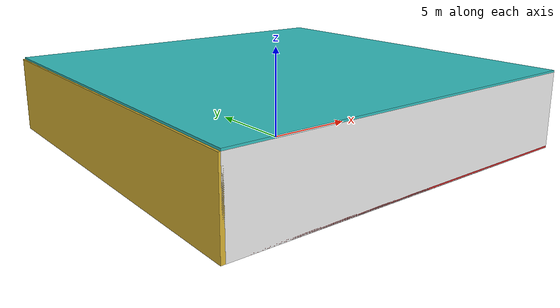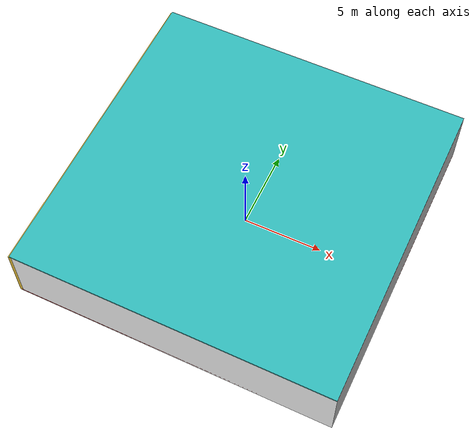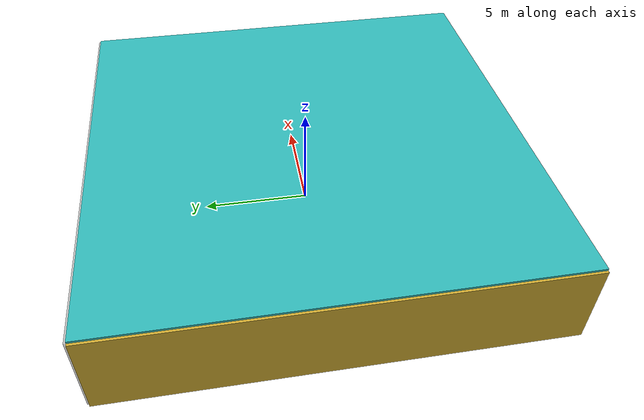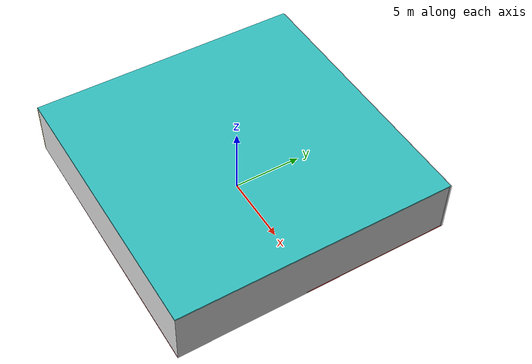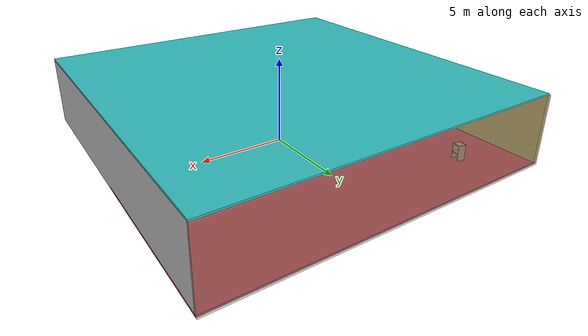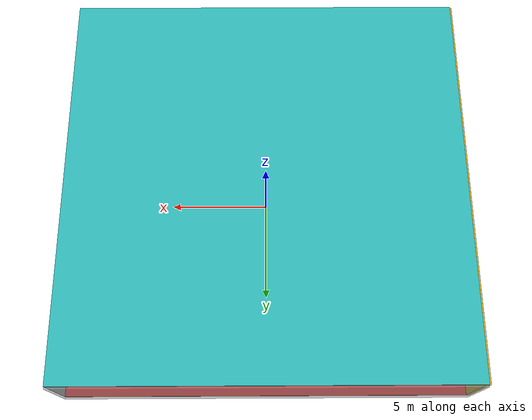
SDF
<sdf version="1.4">
 <world name="default">
  <physics type="ode">
   <max_step_size>0.001</max_step_size>
   <real_time_factor>1</real_time_factor>
   <real_time_update_rate>1000</real_time_update_rate>
   <gravity>0 0 -9.8</gravity>
  </physics>
  <scene><ambient>0.4 0.4 0.4 1</ambient><background>0.7 0.7 0.7 1</background><shadows>1</shadows></scene>
  <model name="Surrounding">
   <static>1</static>
   <link name="Ceiling">
    <collision name="Ceiling_Collision"><geometry><box><size>20 20 0.1</size></box></geometry></collision>
    <visual name="Ceiling_Visual">
     <geometry><box><size>20 20 0.1</size></box></geometry>
     <material>
      <script>
       <uri>file://media/materials/scripts/gazebo.material</uri>
       <name>Gazebo/TurquoiseGlowOutline</name>
      </script>
     </material>
    </visual>
    <pose>0 0 4.05 0 0 0</pose>
   </link>
   <link name="Wall_South">
    <collision name="Wall_South_Collision">
     <geometry><box><size>20 0 4</size></box></geometry>
     <pose>0 0 2 0 -0 0</pose>
    </collision>
    <visual name="Wall_South_Visual">
     <pose>0 0 2 0 -0 0</pose>
     <geometry><box><size>20 0 4</size></box></geometry>
     <material>
      <script><uri>file://media/materials/scripts/gazebo.material</uri><name>Gazebo/WhiteGlow</name></script>
     </material>
    </visual>
    <velocity_decay><linear>0</linear><angular>0</angular></velocity_decay>
    <pose>0 -10 0 0 -0 0</pose>
   </link>
   <link name="Wall_East">
    <collision name="Wall_21_Collision">
     <geometry><box><size>20 0 4</size></box></geometry>
     <pose>0 0 2 0 -0 0</pose>
    </collision>
    <visual name="Wall_21_Visual">
     <pose>0 0 2 0 -0 0</pose>
     <geometry><box><size>20 0 4</size></box></geometry>
     <material>
      <script><uri>file://media/materials/scripts/gazebo.material</uri><name>Gazebo/LightOff</name></script>
     </material>
    </visual>
    <velocity_decay><linear>0</linear><angular>0</angular></velocity_decay>
    <pose>10 0 0 0 -0 1.5708</pose>
   </link>
   <link name="Wall_North">
    <collision name="Wall_22_Collision">
     <geometry><box><size>20 0.2 4</size></box></geometry>
     <pose>0 0 2 0 -0 0</pose>
    </collision>
    <visual name="Wall_22_Visual">
     <pose>0 0 2 0 -0 0</pose>
     <geometry><box><size>20 0.2 4</size></box></geometry>
     <material>
      <script><uri>file://media/materials/scripts/gazebo.material</uri><name>Gazebo/GreyTransparent</name></script>
     </material>
    </visual>
    <velocity_decay><linear>0</linear><angular>0</angular></velocity_decay>
    <pose>0 10 0 0 -0 0</pose>
   </link>
   <link name="Wall_West">
    <collision name="Wall_23_Collision">
     <geometry><box><size>20 0.2 4</size></box></geometry>
     <pose>0 0 2 0 -0 0</pose>
    </collision>
    <visual name="Wall_23_Visual">
     <pose>0 0 2 0 -0 0</pose>
     <geometry><box><size>20 0.2 4</size></box></geometry>
     <material>
      <script><uri>file://media/materials/scripts/gazebo.material</uri><name>Gazebo/Gold</name></script>
     </material>
    </visual>
    <velocity_decay><linear>0</linear><angular>0</angular></velocity_decay>
    <pose>-10 0 0 0 0 -1.5708</pose>
   </link>
   <link name="Ground_link">
    <collision name="collision">
     <pose>0 0 .05 0 -0 0</pose>
     <geometry><box><size>20 20 0.1</size></box></geometry>
    </collision>
    <visual name="visual">
     <pose>0 0 .05 0 -0 0</pose>
     <geometry><box><size>20 20 0.1</size></box></geometry>
     <material>
      <script><uri>file://media/materials/scripts/gazebo.material</uri><name>Gazebo/RedGlow</name></script>
     </material>
    </visual>
   </link>
   <static>1</static>
  </model>
  <spherical_coordinates>
   <surface_model>EARTH_WGS84</surface_model>
   <latitude_deg>0</latitude_deg>
   <longitude_deg>0</longitude_deg>
   <elevation>0</elevation>
   <heading_deg>0</heading_deg>
  </spherical_coordinates>
  <light name="lightball_0" type="diffuse">
   <diffuse>0.8 0.8 0.8 1</diffuse>
   <specular>0.2 0.2 0.2 1</specular>
   <attenuation>
    <range>100</range>
    <constant>0.7</constant>
    <linear>0.01</linear>
    <quadratic>0.001</quadratic>
   </attenuation>
   <direction>-0.5 0.1 -0.9</direction>
   <pose>-8.42802159149 5.50234143477 0.971155930541 0 0 0</pose>
  </light>
  <light name="lightball_1" type="diffuse">
   <diffuse>0.8 0.8 0.8 1</diffuse>
   <specular>0.2 0.2 0.2 1</specular>
   <attenuation>
    <range>100</range>
    <constant>0.7</constant>
    <linear>0.01</linear>
    <quadratic>0.001</quadratic>
   </attenuation>
   <direction>-0.5 0.1 -0.9</direction>
   <pose>-1.47902032038 -1.2663341476 1.9443059521 0 0 0</pose>
  </light>
  <light name="lightball_2" type="diffuse">
   <diffuse>0.8 0.8 0.8 1</diffuse>
   <specular>0.2 0.2 0.2 1</specular>
   <attenuation>
    <range>100</range>
    <constant>0.7</constant>
    <linear>0.01</linear>
    <quadratic>0.001</quadratic>
   </attenuation>
   <direction>-0.5 0.1 -0.9</direction>
   <pose>2.49881667075 8.43141775099 1.97668361838 0 0 0</pose>
  </light>
  <light name="lightball_3" type="diffuse">
   <diffuse>0.8 0.8 0.8 1</diffuse>
   <specular>0.2 0.2 0.2 1</specular>
   <attenuation>
    <range>100</range>
    <constant>0.7</constant>
    <linear>0.01</linear>
    <quadratic>0.001</quadratic>
   </attenuation>
   <direction>-0.5 0.1 -0.9</direction>
   <pose>6.44872055878 3.59325747444 1.68985400382 0 0 0</pose>
  </light>
  <light name="lightball_4" type="diffuse">
   <diffuse>0.8 0.8 0.8 1</diffuse>
   <specular>0.2 0.2 0.2 1</specular>
   <attenuation>
    <range>100</range>
    <constant>0.7</constant>
    <linear>0.01</linear>
    <quadratic>0.001</quadratic>
   </attenuation>
   <direction>-0.5 0.1 -0.9</direction>
   <pose>-8.12708702157 -8.48032531215 3.10756472393 0 0 0</pose>
  </light>
  <light name="lightball_5" type="diffuse">
   <diffuse>0.8 0.8 0.8 1</diffuse>
   <specular>0.2 0.2 0.2 1</specular>
   <attenuation>
    <range>100</range>
    <constant>0.7</constant>
    <linear>0.01</linear>
    <quadratic>0.001</quadratic>
   </attenuation>
   <direction>-0.5 0.1 -0.9</direction>
   <pose>8.97385243403 3.68412392329 3.70056795707 0 0 0</pose>
  </light>
  <light name="lightball_6" type="diffuse">
   <diffuse>0.8 0.8 0.8 1</diffuse>
   <specular>0.2 0.2 0.2 1</specular>
   <attenuation>
    <range>100</range>
    <constant>0.7</constant>
    <linear>0.01</linear>
    <quadratic>0.001</quadratic>
   </attenuation>
   <direction>-0.5 0.1 -0.9</direction>
   <pose>-5.89799317719 -6.71017419492 1.67407932506 0 0 0</pose>
  </light>
  <light name="lightball_7" type="diffuse">
   <diffuse>0.8 0.8 0.8 1</diffuse>
   <specular>0.2 0.2 0.2 1</specular>
   <attenuation>
    <range>100</range>
    <constant>0.7</constant>
    <linear>0.01</linear>
    <quadratic>0.001</quadratic>
   </attenuation>
   <direction>-0.5 0.1 -0.9</direction>
   <pose>9.66741515257 -2.19596735079 1.33423924988 0 0 0</pose>
  </light>
  <include><uri>model://cabinet</uri><pose>-6.79231717939 7.47195854735 0 0 0 2.91406930612</pose></include>
  <include><uri>model://cabinet</uri><pose>-3.85212726104 -8.20234741803 0 0 0 1.92250115237</pose></include>
  <include>
   <uri>model://textured_shapes</uri>
   <pose>-1.38078342336 -7.40588422329 0 0 0 1.64234032731</pose>
  </include>
  <include>
   <uri>model://construction_cone</uri>
   <pose>6.87478632269 1.79016930804 0 0 0 2.82020584184</pose>
  </include>
 </world>
</sdf>

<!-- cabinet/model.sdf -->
<sdf version="1.5">
  <model name="cabinet">
    <static>true</static>
    <link name="cabinet_bottom_plate">
      <inertial>
        <pose>0 0 -1 0 0 0</pose>
        <inertia>
          <ixx>2.050000</ixx>
          <ixy>0</ixy>
          <ixz>0</ixz>
          <iyy>2.050000</iyy>
          <iyz>0</iyz>
          <izz>2.050000</izz>
        </inertia>
        <mass>25.000000</mass>
      </inertial>
      <collision name="cabinet_bottom_plate_geom">
        <pose>0 0 0.010000 0 0 0</pose>
        <geometry>
          <box>
            <size>0.450000 0.450000 0.020000</size>
          </box>
        </geometry>
      </collision>
      <visual name="cabinet_bottom_plate_geom_visual">
        <pose>0 0 0.010000 0 0 0</pose>
        <geometry>
          <box>
            <size>0.450000 0.450000 0.020000</size>
          </box>
        </geometry>
        <material>
          <script>
            <uri>model://media/materials/scripts/gazebo.material</uri>
            <name>Gazebo/Wood</name>
          </script>
        </material>
      </visual>
      <collision name="cabinet_bottom_plate_geom_cabinet_back_plate">
        <pose>0.235000 0 0.510000 0 0 0</pose>
        <geometry>
          <box>
            <size>0.020000 0.450000 1.020000</size>
          </box>
        </geometry>
      </collision>
      <visual name="cabinet_bottom_plate_geom_cabinet_back_plate_visual">
        <pose>0.235000 0 0.510000 0 0 0</pose>
        <geometry>
          <box>
            <size>0.020000 0.450000 1.020000</size>
          </box>
        </geometry>
        <material>
          <script>
            <uri>model://media/materials/scripts/gazebo.material</uri>
            <name>Gazebo/Wood</name>
          </script>
        </material>
      </visual>
      <collision name="cabinet_bottom_plate_geom_cabinet_left_plate">
        <pose>0 0.235000 0.510000 0 0 0</pose>
        <geometry>
          <box>
            <size>0.450000 0.020000 1.020000</size>
          </box>
        </geometry>
      </collision>
      <visual name="cabinet_bottom_plate_geom_cabinet_left_plate_visual">
        <pose>0 0.235000 0.510000 0 0 0</pose>
        <geometry>
          <box>
            <size>0.450000 0.020000 1.020000</size>
          </box>
        </geometry>
        <material>
          <script>
            <uri>model://media/materials/scripts/gazebo.material</uri>
            <name>Gazebo/Wood</name>
          </script>
        </material>
      </visual>
      <collision name="cabinet_bottom_plate_geom_cabinet_middle_plate">
        <pose>0 0 0.510000 0 0 0</pose>
        <geometry>
          <box>
            <size>0.450000 0.450000 0.020000</size>
          </box>
        </geometry>
      </collision>
      <visual name="cabinet_bottom_plate_geom_cabinet_middle_plate_visual">
        <pose>0 0 0.510000 0 0 0</pose>
        <geometry>
          <box>
            <size>0.450000 0.450000 0.020000</size>
          </box>
        </geometry>
        <material>
          <script>
            <uri>model://media/materials/scripts/gazebo.material</uri>
            <name>Gazebo/Wood</name>
          </script>
        </material>
      </visual>
      <collision name="cabinet_bottom_plate_geom_cabinet_right_plate">
        <pose>0 -0.235000 0.510000 0 0 0</pose>
        <geometry>
          <box>
            <size>0.450000 0.020000 1.020000</size>
          </box>
        </geometry>
      </collision>
      <visual name="cabinet_bottom_plate_geom_cabinet_right_plate_visual">
        <pose>0 -0.235000 0.510000 0 0 0</pose>
        <geometry>
          <box>
            <size>0.450000 0.020000 1.020000</size>
          </box>
        </geometry>
        <material>
          <script>
            <uri>model://media/materials/scripts/gazebo.material</uri>
            <name>Gazebo/Wood</name>
          </script>
        </material>
      </visual>
      <collision name="cabinet_bottom_plate_geom_cabinet_top_plate">
        <pose>0 0 1.010000 0 0 0</pose>
        <geometry>
          <box>
            <size>0.450000 0.450000 0.020000</size>
          </box>
        </geometry>
      </collision>
      <visual name="cabinet_bottom_plate_geom_cabinet_top_plate_visual">
        <pose>0 0 1.010000 0 0 0</pose>
        <geometry>
          <box>
            <size>0.450000 0.450000 0.020000</size>
          </box>
        </geometry>
        <material>
          <script>
            <uri>model://media/materials/scripts/gazebo.material</uri>
            <name>Gazebo/Wood</name>
          </script>
        </material>
      </visual>
    </link>
  </model>
</sdf>

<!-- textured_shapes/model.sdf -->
<sdf version="1.6">
  <model name="textured_shapes">
    <pose>0 0 0.5 0 0 0</pose>
    <link name="box">
      <pose>0 -1.5 0 0 0 0</pose>
      <collision name="collision">
        <geometry>
          <box>
            <size>1 1 1</size>
          </box>
        </geometry>
      </collision>
      <visual name="visual">
        <geometry>
          <box>
            <size>1 1 1</size>
          </box>
        </geometry>
        <material>
          <script>
            <uri>model://../model_source/models/textured_shapes/materials/scripts</uri>
            <uri>model://../model_source/models/textured_shapes/materials/textures</uri>
            <name>TexturedShape/Squares</name>
          </script>
        </material>
      </visual>
    </link>
    <link name="sphere">
      <collision name="collision">
        <geometry>
          <sphere>
            <radius>0.5</radius>
          </sphere>
        </geometry>
      </collision>
      <visual name="visual">
        <geometry>
          <sphere>
            <radius>0.5</radius>
          </sphere>
        </geometry>
        <material>
          <script>
            <uri>model://../model_source/models/textured_shapes/materials/scripts</uri>
            <uri>model://../model_source/models/textured_shapes/materials/textures</uri>
            <name>TexturedShape/Squares</name>
          </script>
        </material>
      </visual>
    </link>
    <link name="cylinder">
      <pose>0 1.5 0 0 0 0</pose>
      <collision name="collision">
        <geometry>
          <cylinder>
            <radius>0.5</radius>
            <length>1</length>
          </cylinder>
        </geometry>
      </collision>
      <visual name="visual">
        <geometry>
          <cylinder>
            <radius>0.5</radius>
            <length>1</length>
          </cylinder>
        </geometry>
        <material>
          <script>
            <uri>model://../model_source/models/textured_shapes/materials/scripts</uri>
            <uri>model://../model_source/models/textured_shapes/materials/textures</uri>
            <name>TexturedShape/Squares</name>
          </script>
        </material>
      </visual>
    </link>
  </model>
</sdf>

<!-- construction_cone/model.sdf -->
<sdf version="1.5">
  <model name="Construction Cone">
    <link name="link">
      <collision name="collision">
        <geometry>
          <mesh>
            <scale>10 10 10</scale>
            <uri>file://isr-testbed/construction_cone/meshes/construction_cone.dae</uri>
          </mesh>
        </geometry>
      </collision>
      <visual name="visual">
        <geometry>
          <mesh>
            <scale>10 10 10</scale>
            <uri>file://isr-testbed/construction_cone/meshes/construction_cone.dae</uri>
          </mesh>
        </geometry>
      </visual>
    </link>
  </model>
</sdf>
